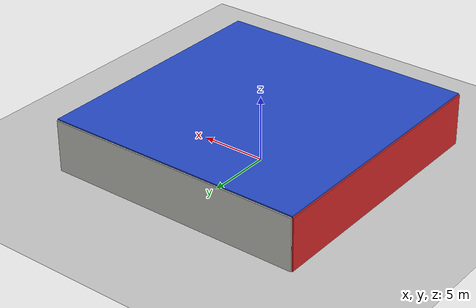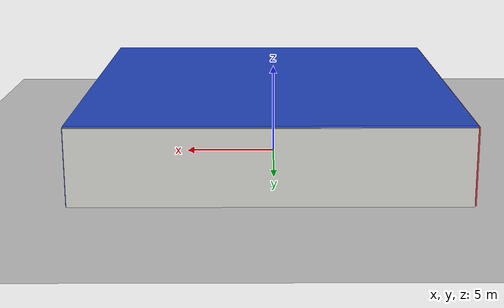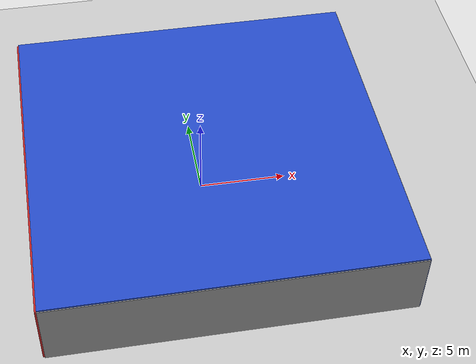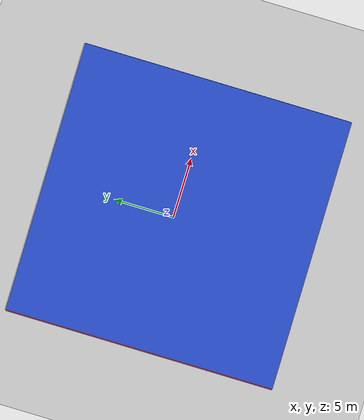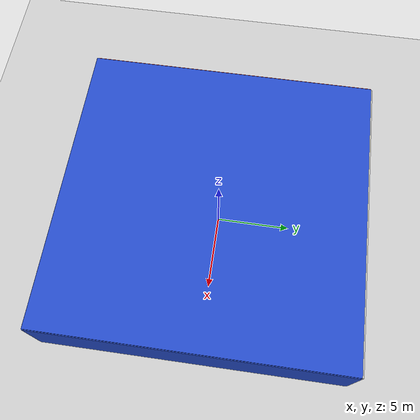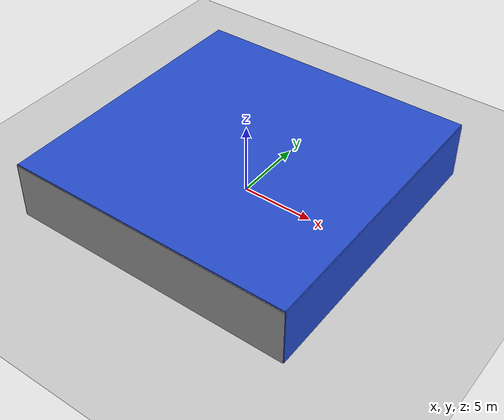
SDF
<sdf version="1.6">
 <world name="default">
  <light name="sun" type="directional">
   <pose>0 0 10 0 -0 0</pose>
   <diffuse>0.8 0.8 0.8 1</diffuse>
   <specular>0.2 0.2 0.2 1</specular>
   <attenuation>
    <range>1000</range>
    <constant>0.9</constant>
    <linear>0.01</linear>
    <quadratic>0.001</quadratic>
   </attenuation>
   <direction>-0.5 0.1 -0.9</direction>
  </light>
  <model name="ground_plane">
   <static>1</static>
   <link name="link">
    <collision name="collision">
     <geometry><plane><normal>0 0 1</normal><size>100 100</size></plane></geometry>
     <surface><friction><ode><mu>100</mu><mu2>50</mu2></ode></friction></surface>
    </collision>
    <visual name="visual">
     <cast_shadows>0</cast_shadows>
     <geometry><plane><normal>0 0 1</normal><size>100 100</size></plane></geometry>
     <material>
      <script><uri>file://media/materials/scripts/gazebo.material</uri><name>Gazebo/Grey</name></script>
     </material>
    </visual>
   </link>
  </model>
  <gravity>0 0 -9.8</gravity>
  <magnetic_field>6e-06 2.3e-05 -4.2e-05</magnetic_field>
  <atmosphere type="adiabatic"/>
  <physics default="0" name="default_physics" type="ode">
   <max_step_size>0.001</max_step_size>
   <real_time_factor>1</real_time_factor>
   <real_time_update_rate>1000</real_time_update_rate>
  </physics>
  <scene><ambient>0.4 0.4 0.4 1</ambient><background>0.7 0.7 0.7 1</background><shadows>1</shadows></scene>
  <spherical_coordinates>
   <surface_model>EARTH_WGS84</surface_model>
   <latitude_deg>0</latitude_deg>
   <longitude_deg>0</longitude_deg>
   <elevation>0</elevation>
   <heading_deg>0</heading_deg>
  </spherical_coordinates>
  <model name="four_walls">
   <static>1</static>
   <link name="Ceiling">
    <collision name="Ceiling_Collision"><geometry><box><size>20 20 0.1</size></box></geometry></collision>
    <visual name="Ceiling_Visual">
     <geometry><box><size>20 20 0.1</size></box></geometry>
     <material>
      <script><uri>file://media/materials/scripts/gazebo.material</uri><name>Gazebo/BlueGlow</name></script>
     </material>
    </visual>
    <pose>0 0 4.05 0 -0 0</pose>
   </link>
   <link name="Wall_South">
    <collision name="Wall_South_Collision">
     <geometry><box><size>20 0.1 4</size></box></geometry>
     <pose>0 0 2 0 -0 0</pose>
    </collision>
    <visual name="Wall_South_Visual">
     <pose>0 0 2 0 -0 0</pose>
     <geometry><box><size>20 0.1 4</size></box></geometry>
     <material>
      <script><uri>file://media/materials/scripts/gazebo.material</uri><name>Gazebo/GreyGradientSky</name></script>
     </material>
    </visual>
    <velocity_decay><linear>0</linear><angular>0</angular></velocity_decay>
    <pose>0 -10 0 0 -0 0</pose>
   </link>
   <link name="Wall_East">
    <collision name="Wall_21_Collision">
     <geometry><box><size>20 0.1 4</size></box></geometry>
     <pose>0 0 2 0 -0 0</pose>
    </collision>
    <visual name="Wall_21_Visual">
     <pose>0 0 2 0 -0 0</pose>
     <geometry><box><size>20 0.1 4</size></box></geometry>
     <material>
      <script><uri>file://media/materials/scripts/gazebo.material</uri><name>Gazebo/BlueGlow</name></script>
     </material>
    </visual>
    <velocity_decay><linear>0</linear><angular>0</angular></velocity_decay>
    <pose>10 0 0 0 -0 1.5708</pose>
   </link>
   <link name="Wall_North">
    <collision name="Wall_22_Collision">
     <geometry><box><size>20 0.2 4</size></box></geometry>
     <pose>0 0 2 0 -0 0</pose>
    </collision>
    <visual name="Wall_22_Visual">
     <pose>0 0 2 0 -0 0</pose>
     <geometry><box><size>20 0.2 4</size></box></geometry>
     <material>
      <script><uri>file://media/materials/scripts/gazebo.material</uri><name>Gazebo/CeilingTiled</name></script>
     </material>
    </visual>
    <velocity_decay><linear>0</linear><angular>0</angular></velocity_decay>
    <pose>0 10 0 0 -0 0</pose>
   </link>
   <link name="Wall_West">
    <collision name="Wall_23_Collision">
     <geometry><box><size>20 0.2 4</size></box></geometry>
     <pose>0 0 2 0 -0 0</pose>
    </collision>
    <visual name="Wall_23_Visual">
     <pose>0 0 2 0 -0 0</pose>
     <geometry><box><size>20 0.2 4</size></box></geometry>
     <material>
      <script><uri>file://media/materials/scripts/gazebo.material</uri><name>Gazebo/RedGlow</name></script>
     </material>
    </visual>
    <velocity_decay><linear>0</linear><angular>0</angular></velocity_decay>
    <pose>-10 0 0 0 0 -1.5708</pose>
   </link>
   <link name="Ground_link">
    <collision name="collision">
     <pose>0 0 0.05 0 -0 0</pose>
     <geometry><box><size>20 20 0.1</size></box></geometry>
    </collision>
    <visual name="visual">
     <pose>0 0 0.05 0 -0 0</pose>
     <geometry><box><size>20 20 0.1</size></box></geometry>
     <material>
      <script><uri>file://media/materials/scripts/gazebo.material</uri><name>Gazebo/PioneerBody</name></script>
     </material>
    </visual>
   </link>
   <pose>0.205996 -0.361878 0 0 -0 0</pose>
  </model>
  <include>
   <uri>model://textured_shapes_sphere</uri>
   <pose>-7.00377840692 -7.07981547565 0 0 0 1.57947050212</pose>
  </include>
  <include>
   <uri>model://textured_shapes_box</uri>
   <pose>-7.02949330703 8.19967518267 0 0 0 1.30915363423</pose>
  </include>
  <include>
   <uri>model://textured_shapes_box</uri>
   <pose>-4.13892421361 -6.86957473403 0 0 0 3.13155910314</pose>
  </include>
  <include>
   <uri>model://textured_shapes_cylinder</uri>
   <pose>5.15065253219 1.98667497412 0 0 0 2.99281334825</pose>
  </include>
  <include>
   <uri>model://textured_shapes_sphere</uri>
   <pose>5.03868265491 5.18537868145 0 0 0 2.05797389529</pose>
  </include>
  <include>
   <uri>model://textured_shapes_sphere</uri>
   <pose>4.9350822478 7.86515670991 0 0 0 0.0144903296966</pose>
  </include>
  <include>
   <uri>model://textured_shapes_cylinder</uri>
   <pose>8.13100768205 -6.9664544911 0 0 0 1.31195622587</pose>
  </include>
 </world>
</sdf>

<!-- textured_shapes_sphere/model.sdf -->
<sdf version="1.6">
  <model name="textured_shapes">
    <pose>0 0 0.5 0 0 0</pose>
    <link name="sphere">
      <collision name="collision">
        <geometry>
          <sphere>
            <radius>0.5</radius>
          </sphere>
        </geometry>
      </collision>
      <visual name="visual">
        <geometry>
          <sphere>
            <radius>0.5</radius>
          </sphere>
        </geometry>
        <material>
          <script>
            <uri>model://textured_shapes/materials/scripts</uri>
            <uri>model://textured_shapes/materials/textures</uri>
            <name>TexturedShape/Squares</name>
          </script>
        </material>
      </visual>
    </link>
  </model>
</sdf>

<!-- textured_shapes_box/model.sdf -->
<sdf version="1.6">
  <model name="textured_shapes">
    <pose>0 0 0.5 0 0 0</pose>
    <link name="box">
      <pose>0 -1.5 0 0 0 0</pose>
      <collision name="collision">
        <geometry>
          <box>
            <size>1 1 1</size>
          </box>
        </geometry>
      </collision>
      <visual name="visual">
        <geometry>
          <box>
            <size>1 1 1</size>
          </box>
        </geometry>
        <material>
          <script>
            <uri>model://textured_shapes/materials/scripts</uri>
            <uri>model://textured_shapes/materials/textures</uri>
            <name>TexturedShape/Squares</name>
          </script>
        </material>
      </visual>
    </link>
  </model>
</sdf>

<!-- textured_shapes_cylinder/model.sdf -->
<sdf version="1.6">
  <model name="textured_shapes">
    <pose>0 0 0.5 0 0 0</pose>
    <link name="cylinder">
      <pose>0 1.5 0 0 0 0</pose>
      <collision name="collision">
        <geometry>
          <cylinder>
            <radius>0.5</radius>
            <length>1</length>
          </cylinder>
        </geometry>
      </collision>
      <visual name="visual">
        <geometry>
          <cylinder>
            <radius>0.5</radius>
            <length>1</length>
          </cylinder>
        </geometry>
        <material>
          <script>
            <uri>model://textured_shapes/materials/scripts</uri>
            <uri>model://textured_shapes/materials/textures</uri>
            <name>TexturedShape/Squares</name>
          </script>
        </material>
      </visual>
    </link>
  </model>
</sdf>
